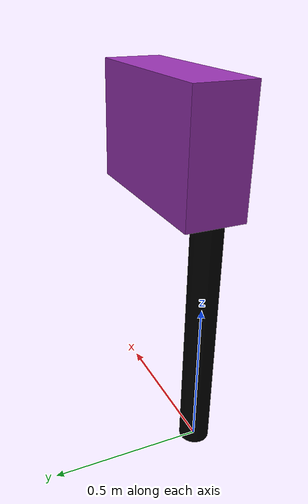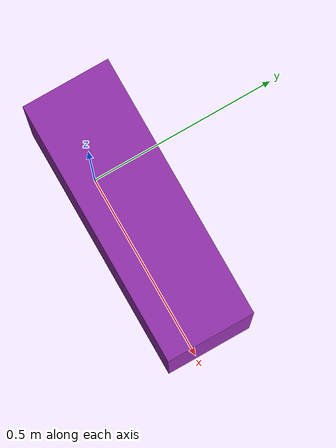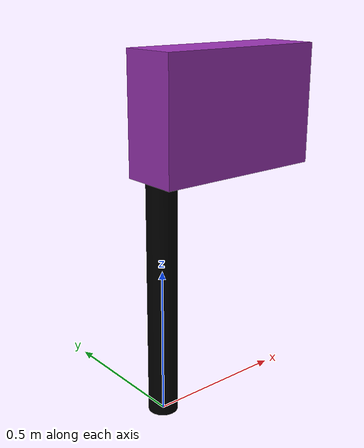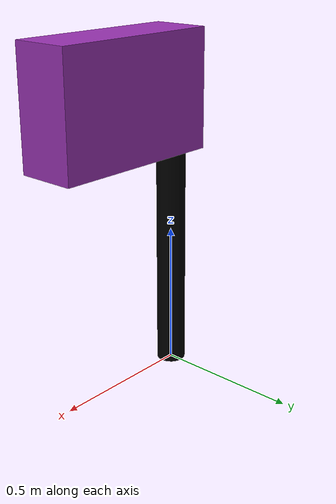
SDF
<?xml version="1.0" encoding="UTF-8"?>
<sdf version="1.4">
  <model name="flag">
    <static>true</static>
    <link name="flag">
      <visual name="base">
        <pose>0 0 0.5 0 0 0</pose>
        <geometry>
          <cylinder>
            <radius>0.05</radius>
            <length>1</length>
          </cylinder>
        </geometry>

        <!-- BLACK -->
        <material>
          <ambient>0 0 0 1</ambient>
        </material>
      </visual>

      <visual name="top">
        <pose>0.25 0 1 0 0 0</pose>
        <geometry>
          <box>
            <size>0.6 0.2 0.4</size>
          </box>
        </geometry>

        <!-- PURPLE -->
        <material>
          <script>
            <uri>file://media/materials/scripts/gazebo.material</uri>
            <name>Gazebo/Purple</name>
          </script>
        </material>

      </visual>
    </link>
  </model>
</sdf>
